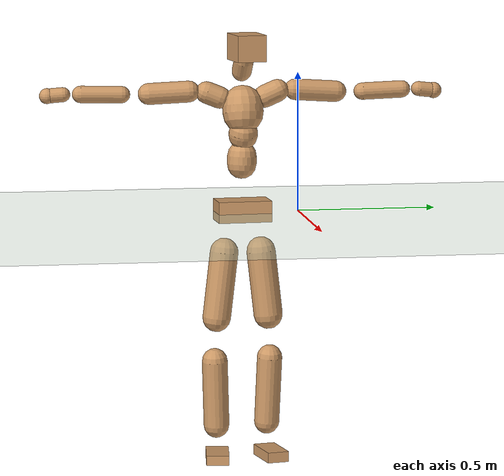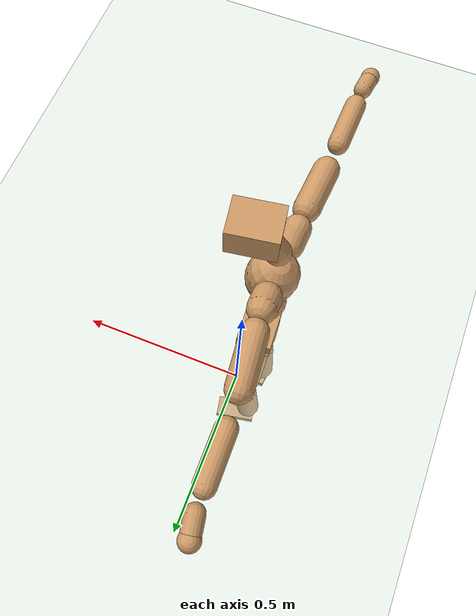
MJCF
<mujoco model="humanoid">
  <compiler coordinate="local" angle="radian"/>
  <default>
    <joint damping="0.0" armature="0.01" stiffness="0.0" limited="true"/>
    <geom conaffinity="1" condim="3" contype="7" margin="0.001" rgba="0.8 0.6 .4 1"/>
  </default>
  <asset>
    <texture type="skybox" builtin="gradient" rgb1=".4 .5 .6" rgb2="0 0 0" width="100" height="100"/>
    <texture builtin="flat" height="1278" mark="cross" markrgb="1 1 1" name="texgeom" random="0.01" rgb1="0.8 0.6 0.4" rgb2="0.8 0.6 0.4" type="cube" width="127"/>
    <texture builtin="checker" height="100" name="texplane" rgb1="0 0 0" rgb2="0.8 0.8 0.8" type="2d" width="100"/>
    <material name="MatPlane" reflectance="0.5" shininess="1" specular="1" texrepeat="60 60" texture="texplane"/>
    <material name="geom" texture="texgeom" texuniform="true"/>
  </asset>
  <worldbody>
    <light cutoff="100" diffuse="1 1 1" dir="-0 0 -1.3" directional="true" exponent="1" pos="0 0 1.3" specular=".1 .1 .1"/>
    <geom conaffinity="1" condim="3" name="floor" pos="0 0 0" rgba="0.8 0.9 0.8 1" size="100 100 .2" type="plane" material="MatPlane"/>
    <body name="Pelvis" pos="-0.0035 -0.1997 0.0163">
      <freejoint name="Pelvis"/>
      <geom type="box" contype="1" conaffinity="1" density="500" pos="-0.0058 -0.0003 -0.0116" size="0.0557 0.0963 0.0381" quat="0.9996 0.0000 0.0000 0.0287" name="Pelvis"/>
      <body name="L_Hip" pos="-0.0116 0.0591 -0.0846">
        <joint name="L_Hip_x" type="hinge" pos="0 0 0" axis="1 0 0" stiffness="800" damping="80" armature="0.02" range="-180.0000 180.0000"/>
        <joint name="L_Hip_y" type="hinge" pos="0 0 0" axis="0 1 0" stiffness="800" damping="80" armature="0.02" range="-180.0000 180.0000"/>
        <joint name="L_Hip_z" type="hinge" pos="0 0 0" axis="0 0 1" stiffness="800" damping="80" armature="0.02" range="-180.0000 180.0000"/>
        <geom type="capsule" contype="1" conaffinity="1" density="500" fromto="0.0019 0.0086 -0.0776 0.0074 0.0343 -0.3103" size="0.052" name="L_Hip"/>
        <body name="L_Knee" pos="0.0093 0.0428 -0.3879">
          <joint name="L_Knee_x" type="hinge" pos="0 0 0" axis="1 0 0" stiffness="800" damping="80" armature="0.02" range="-180.0000 180.0000"/>
          <joint name="L_Knee_y" type="hinge" pos="0 0 0" axis="0 1 0" stiffness="800" damping="80" armature="0.02" range="-180.0000 180.0000"/>
          <joint name="L_Knee_z" type="hinge" pos="0 0 0" axis="0 0 1" stiffness="800" damping="80" armature="0.02" range="-180.0000 180.0000"/>
          <geom type="capsule" contype="1" conaffinity="1" density="500" fromto="-0.0073 -0.0023 -0.0807 -0.0294 -0.0092 -0.3226" size="0.0456" name="L_Knee"/>
          <body name="L_Ankle" pos="-0.0367 -0.0115 -0.4033">
            <joint name="L_Ankle_x" type="hinge" pos="0 0 0" axis="1 0 0" stiffness="800" damping="80" armature="0.02" range="-180.0000 180.0000"/>
            <joint name="L_Ankle_y" type="hinge" pos="0 0 0" axis="0 1 0" stiffness="800" damping="80" armature="0.02" range="-180.0000 180.0000"/>
            <joint name="L_Ankle_z" type="hinge" pos="0 0 0" axis="0 0 1" stiffness="800" damping="80" armature="0.02" range="-180.0000 180.0000"/>
            <geom type="box" contype="1" conaffinity="1" density="500" pos="0.0566 0.0108 -0.0278" size="0.0787 0.0394 0.0189" quat="0.9956 0.0000 0.0000 0.0941" name="L_Ankle"/>
            <body name="L_Toe" pos="0.1132 0.0216 -0.0556">
              <joint name="L_Toe_x" type="hinge" pos="0 0 0" axis="1 0 0" stiffness="500" damping="50" armature="0.02" range="-180.0000 180.0000"/>
              <joint name="L_Toe_y" type="hinge" pos="0 0 0" axis="0 1 0" stiffness="500" damping="50" armature="0.02" range="-180.0000 180.0000"/>
              <joint name="L_Toe_z" type="hinge" pos="0 0 0" axis="0 0 1" stiffness="500" damping="50" armature="0.02" range="-180.0000 180.0000"/>
              <geom type="box" contype="1" conaffinity="1" density="500" pos="0.0000 0.0000 0.0287" size="0.0008 0.002 0.001" quat="0.9949 0.0000 0.0000 0.1009" name="L_Toe"/>
            </body>
          </body>
        </body>
      </body>
      <body name="R_Hip" pos="-0.0083 -0.0574 -0.0829">
        <joint name="R_Hip_x" type="hinge" pos="0 0 0" axis="1 0 0" stiffness="800" damping="80" armature="0.02" range="-180.0000 180.0000"/>
        <joint name="R_Hip_y" type="hinge" pos="0 0 0" axis="0 1 0" stiffness="800" damping="80" armature="0.02" range="-180.0000 180.0000"/>
        <joint name="R_Hip_z" type="hinge" pos="0 0 0" axis="0 0 1" stiffness="800" damping="80" armature="0.02" range="-180.0000 180.0000"/>
        <geom type="capsule" contype="1" conaffinity="1" density="500" fromto="0.0012 -0.0094 -0.0798 0.0048 -0.0376 -0.3191" size="0.051" name="R_Hip"/>
        <body name="R_Knee" pos="0.006 -0.047 -0.3989">
          <joint name="R_Knee_x" type="hinge" pos="0 0 0" axis="1 0 0" stiffness="800" damping="80" armature="0.02" range="-180.0000 180.0000"/>
          <joint name="R_Knee_y" type="hinge" pos="0 0 0" axis="0 1 0" stiffness="800" damping="80" armature="0.02" range="-180.0000 180.0000"/>
          <joint name="R_Knee_z" type="hinge" pos="0 0 0" axis="0 0 1" stiffness="800" damping="80" armature="0.02" range="-180.0000 180.0000"/>
          <geom type="capsule" contype="1" conaffinity="1" density="500" fromto="-0.0067 0.0029 -0.0804 -0.0268 0.0118 -0.3215" size="0.0462" name="R_Knee"/>
          <body name="R_Ankle" pos="-0.0335 0.0147 -0.4019">
            <joint name="R_Ankle_x" type="hinge" pos="0 0 0" axis="1 0 0" stiffness="800" damping="80" armature="0.02" range="-180.0000 180.0000"/>
            <joint name="R_Ankle_y" type="hinge" pos="0 0 0" axis="0 1 0" stiffness="800" damping="80" armature="0.02" range="-180.0000 180.0000"/>
            <joint name="R_Ankle_z" type="hinge" pos="0 0 0" axis="0 0 1" stiffness="800" damping="80" armature="0.02" range="-180.0000 180.0000"/>
            <geom type="box" contype="1" conaffinity="1" density="500" pos="0.0574 -0.0069 -0.0234" size="0.0802 0.0413 0.0178" quat="0.9982 0.0000 0.0000 -0.0600" name="R_Ankle"/>
            <body name="R_Toe" pos="0.1148 -0.0138 -0.0468">
              <joint name="R_Toe_x" type="hinge" pos="0 0 0" axis="1 0 0" stiffness="500" damping="50" armature="0.02" range="-180.0000 180.0000"/>
              <joint name="R_Toe_y" type="hinge" pos="0 0 0" axis="0 1 0" stiffness="500" damping="50" armature="0.02" range="-180.0000 180.0000"/>
              <joint name="R_Toe_z" type="hinge" pos="0 0 0" axis="0 0 1" stiffness="500" damping="50" armature="0.02" range="-180.0000 180.0000"/>
              <geom type="box" contype="1" conaffinity="1" density="500" pos="0.0000 0.0000 0.0262" size="0.0007 0.002 0.001" quat="0.9987 0.0000 0.0000 -0.0505" name="R_Toe"/>
            </body>
          </body>
        </body>
      </body>
      <body name="Torso" pos="-0.0151 -0.0037 0.098">
        <joint name="Torso_x" type="hinge" pos="0 0 0" axis="1 0 0" stiffness="1000" damping="100" armature="0.02" range="-180.0000 180.0000"/>
        <joint name="Torso_y" type="hinge" pos="0 0 0" axis="0 1 0" stiffness="1000" damping="100" armature="0.02" range="-180.0000 180.0000"/>
        <joint name="Torso_z" type="hinge" pos="0 0 0" axis="0 0 1" stiffness="1000" damping="100" armature="0.02" range="-180.0000 180.0000"/>
        <geom type="capsule" contype="1" conaffinity="1" density="500" fromto="-0.0014 0.0034 0.0855 -0.0009 0.0023 0.0570" size="0.0531" name="Torso"/>
        <body name="Spine" pos="-0.0023 0.0057 0.1425">
          <joint name="Spine_x" type="hinge" pos="0 0 0" axis="1 0 0" stiffness="1000" damping="100" armature="0.02" range="-180.0000 180.0000"/>
          <joint name="Spine_y" type="hinge" pos="0 0 0" axis="0 1 0" stiffness="1000" damping="100" armature="0.02" range="-180.0000 180.0000"/>
          <joint name="Spine_z" type="hinge" pos="0 0 0" axis="0 0 1" stiffness="1000" damping="100" armature="0.02" range="-180.0000 180.0000"/>
          <geom type="capsule" contype="1" conaffinity="1" density="500" fromto="0.0101 0.0013 0.0284 0.0067 0.0009 0.0189" size="0.0522" name="Spine"/>
          <body name="Chest" pos="0.0168 0.0021 0.0473">
            <joint name="Chest_x" type="hinge" pos="0 0 0" axis="1 0 0" stiffness="1000" damping="100" armature="0.02" range="-180.0000 180.0000"/>
            <joint name="Chest_y" type="hinge" pos="0 0 0" axis="0 1 0" stiffness="1000" damping="100" armature="0.02" range="-180.0000 180.0000"/>
            <joint name="Chest_z" type="hinge" pos="0 0 0" axis="0 0 1" stiffness="1000" damping="100" armature="0.02" range="-180.0000 180.0000"/>
            <geom type="capsule" contype="1" conaffinity="1" density="500" fromto="-0.0156 -0.0017 0.0779 -0.0104 -0.0012 0.0519" size="0.0732" name="Chest"/>
            <body name="Neck" pos="-0.0262 -0.0065 0.187">
              <joint name="Neck_x" type="hinge" pos="0 0 0" axis="1 0 0" stiffness="500" damping="50" armature="0.02" range="-180.0000 180.0000"/>
              <joint name="Neck_y" type="hinge" pos="0 0 0" axis="0 1 0" stiffness="500" damping="50" armature="0.02" range="-180.0000 180.0000"/>
              <joint name="Neck_z" type="hinge" pos="0 0 0" axis="0 0 1" stiffness="500" damping="50" armature="0.02" range="-180.0000 180.0000"/>
              <geom type="capsule" contype="1" conaffinity="1" density="500" fromto="0.0098 0.0012 0.0140 0.0391 0.0046 0.0560" size="0.0354" name="Neck"/>
              <body name="Head" pos="0.0489 0.0058 0.0699">
                <joint name="Head_x" type="hinge" pos="0 0 0" axis="1 0 0" stiffness="500" damping="50" armature="0.02" range="-180.0000 180.0000"/>
                <joint name="Head_y" type="hinge" pos="0 0 0" axis="0 1 0" stiffness="500" damping="50" armature="0.02" range="-180.0000 180.0000"/>
                <joint name="Head_z" type="hinge" pos="0 0 0" axis="0 0 1" stiffness="500" damping="50" armature="0.02" range="-180.0000 180.0000"/>
                <geom type="box" contype="1" conaffinity="1" density="500" pos="0.0254 0.0039 0.0360" size="0.0676 0.0526 0.0472" quat="0.9971 0.0000 0.0000 0.0761" name="Head"/>
              </body>
            </body>
            <body name="L_Thorax" pos="-0.0238 0.0647 0.1023">
              <joint name="L_Thorax_x" type="hinge" pos="0 0 0" axis="1 0 0" stiffness="500" damping="50" armature="0.02" range="-180.0000 180.0000"/>
              <joint name="L_Thorax_y" type="hinge" pos="0 0 0" axis="0 1 0" stiffness="500" damping="50" armature="0.02" range="-180.0000 180.0000"/>
              <joint name="L_Thorax_z" type="hinge" pos="0 0 0" axis="0 0 1" stiffness="500" damping="50" armature="0.02" range="-180.0000 180.0000"/>
              <geom type="capsule" contype="1" conaffinity="1" density="500" fromto="-0.0004 0.0151 0.0065 -0.0017 0.0604 0.0262" size="0.041" name="L_Thorax"/>
              <body name="L_Shoulder" pos="-0.0021 0.0756 0.0327">
                <joint name="L_Shoulder_x" type="hinge" pos="0 0 0" axis="1 0 0" stiffness="500" damping="50" armature="0.02" range="-720.0000 720.0000"/>
                <joint name="L_Shoulder_y" type="hinge" pos="0 0 0" axis="0 1 0" stiffness="500" damping="50" armature="0.02" range="-720.0000 720.0000"/>
                <joint name="L_Shoulder_z" type="hinge" pos="0 0 0" axis="0 0 1" stiffness="500" damping="50" armature="0.02" range="-720.0000 720.0000"/>
                <geom type="capsule" contype="1" conaffinity="1" density="500" fromto="-0.0050 0.0503 -0.0037 -0.0202 0.2010 -0.0148" size="0.0381" name="L_Shoulder"/>
                <body name="L_Elbow" pos="-0.0252 0.2513 -0.0185">
                  <joint name="L_Elbow_x" type="hinge" pos="0 0 0" axis="1 0 0" stiffness="500" damping="50" armature="0.02" range="-720.0000 720.0000"/>
                  <joint name="L_Elbow_y" type="hinge" pos="0 0 0" axis="0 1 0" stiffness="500" damping="50" armature="0.02" range="-720.0000 720.0000"/>
                  <joint name="L_Elbow_z" type="hinge" pos="0 0 0" axis="0 0 1" stiffness="500" damping="50" armature="0.02" range="-720.0000 720.0000"/>
                  <geom type="capsule" contype="1" conaffinity="1" density="500" fromto="-0.0006 0.0483 0.0018 -0.0023 0.1933 0.0070" size="0.0309" name="L_Elbow"/>
                  <body name="L_Wrist" pos="-0.0029 0.2416 0.0088">
                    <joint name="L_Wrist_x" type="hinge" pos="0 0 0" axis="1 0 0" stiffness="300" damping="30" armature="0.02" range="-180.0000 180.0000"/>
                    <joint name="L_Wrist_y" type="hinge" pos="0 0 0" axis="0 1 0" stiffness="300" damping="30" armature="0.02" range="-180.0000 180.0000"/>
                    <joint name="L_Wrist_z" type="hinge" pos="0 0 0" axis="0 0 1" stiffness="300" damping="30" armature="0.02" range="-180.0000 180.0000"/>
                    <geom type="capsule" contype="1" conaffinity="1" density="500" fromto="-0.0025 0.0144 -0.0019 -0.0100 0.0577 -0.0075" size="0.0264" name="L_Wrist"/>
                    <body name="L_Hand" pos="-0.0125 0.0721 -0.0094">
                      <joint name="L_Hand_x" type="hinge" pos="0 0 0" axis="1 0 0" stiffness="300" damping="30" armature="0.02" range="-180.0000 180.0000"/>
                      <joint name="L_Hand_y" type="hinge" pos="0 0 0" axis="0 1 0" stiffness="300" damping="30" armature="0.02" range="-180.0000 180.0000"/>
                      <joint name="L_Hand_z" type="hinge" pos="0 0 0" axis="0 0 1" stiffness="300" damping="30" armature="0.02" range="-180.0000 180.0000"/>
                      <geom type="sphere" contype="1" conaffinity="1" density="500" size="0.0290" pos="0.0000 0.0000 0.0000" name="L_Hand"/>
                    </body>
                  </body>
                </body>
              </body>
            </body>
            <body name="R_Thorax" pos="-0.028 -0.067 0.1001">
              <joint name="R_Thorax_x" type="hinge" pos="0 0 0" axis="1 0 0" stiffness="500" damping="50" armature="0.02" range="-180.0000 180.0000"/>
              <joint name="R_Thorax_y" type="hinge" pos="0 0 0" axis="0 1 0" stiffness="500" damping="50" armature="0.02" range="-180.0000 180.0000"/>
              <joint name="R_Thorax_z" type="hinge" pos="0 0 0" axis="0 0 1" stiffness="500" damping="50" armature="0.02" range="-180.0000 180.0000"/>
              <geom type="capsule" contype="1" conaffinity="1" density="500" fromto="-0.0013 -0.0157 0.0063 -0.0051 -0.0627 0.0251" size="0.0394" name="R_Thorax"/>
              <body name="R_Shoulder" pos="-0.0063 -0.0784 0.0313">
                <joint name="R_Shoulder_x" type="hinge" pos="0 0 0" axis="1 0 0" stiffness="500" damping="50" armature="0.02" range="-720.0000 720.0000"/>
                <joint name="R_Shoulder_y" type="hinge" pos="0 0 0" axis="0 1 0" stiffness="500" damping="50" armature="0.02" range="-720.0000 720.0000"/>
                <joint name="R_Shoulder_z" type="hinge" pos="0 0 0" axis="0 0 1" stiffness="500" damping="50" armature="0.02" range="-720.0000 720.0000"/>
                <geom type="capsule" contype="1" conaffinity="1" density="500" fromto="-0.0033 -0.0478 -0.0025 -0.0132 -0.1914 -0.0099" size="0.0385" name="R_Shoulder"/>
                <body name="R_Elbow" pos="-0.0166 -0.2392 -0.0124">
                  <joint name="R_Elbow_x" type="hinge" pos="0 0 0" axis="1 0 0" stiffness="500" damping="50" armature="0.02" range="-720.0000 720.0000"/>
                  <joint name="R_Elbow_y" type="hinge" pos="0 0 0" axis="0 1 0" stiffness="500" damping="50" armature="0.02" range="-720.0000 720.0000"/>
                  <joint name="R_Elbow_z" type="hinge" pos="0 0 0" axis="0 0 1" stiffness="500" damping="50" armature="0.02" range="-720.0000 720.0000"/>
                  <geom type="capsule" contype="1" conaffinity="1" density="500" fromto="-0.0017 -0.0488 0.0010 -0.0069 -0.1953 0.0039" size="0.0305" name="R_Elbow"/>
                  <body name="R_Wrist" pos="-0.0086 -0.2442 0.0049">
                    <joint name="R_Wrist_x" type="hinge" pos="0 0 0" axis="1 0 0" stiffness="300" damping="30" armature="0.02" range="-180.0000 180.0000"/>
                    <joint name="R_Wrist_y" type="hinge" pos="0 0 0" axis="0 1 0" stiffness="300" damping="30" armature="0.02" range="-180.0000 180.0000"/>
                    <joint name="R_Wrist_z" type="hinge" pos="0 0 0" axis="0 0 1" stiffness="300" damping="30" armature="0.02" range="-180.0000 180.0000"/>
                    <geom type="capsule" contype="1" conaffinity="1" density="500" fromto="-0.0017 -0.0140 -0.0013 -0.0070 -0.0561 -0.0050" size="0.0262" name="R_Wrist"/>
                    <body name="R_Hand" pos="-0.0087 -0.0701 -0.0063">
                      <joint name="R_Hand_x" type="hinge" pos="0 0 0" axis="1 0 0" stiffness="300" damping="30" armature="0.02" range="-180.0000 180.0000"/>
                      <joint name="R_Hand_y" type="hinge" pos="0 0 0" axis="0 1 0" stiffness="300" damping="30" armature="0.02" range="-180.0000 180.0000"/>
                      <joint name="R_Hand_z" type="hinge" pos="0 0 0" axis="0 0 1" stiffness="300" damping="30" armature="0.02" range="-180.0000 180.0000"/>
                      <geom type="sphere" contype="1" conaffinity="1" density="500" size="0.0280" pos="0.0000 0.0000 0.0000" name="R_Hand"/>
                    </body>
                  </body>
                </body>
              </body>
            </body>
          </body>
        </body>
      </body>
    </body>
  </worldbody>
  <actuator>
    <motor name="L_Hip_x" joint="L_Hip_x" gear="500"/>
    <motor name="L_Hip_y" joint="L_Hip_y" gear="500"/>
    <motor name="L_Hip_z" joint="L_Hip_z" gear="500"/>
    <motor name="L_Knee_x" joint="L_Knee_x" gear="500"/>
    <motor name="L_Knee_y" joint="L_Knee_y" gear="500"/>
    <motor name="L_Knee_z" joint="L_Knee_z" gear="500"/>
    <motor name="L_Ankle_x" joint="L_Ankle_x" gear="500"/>
    <motor name="L_Ankle_y" joint="L_Ankle_y" gear="500"/>
    <motor name="L_Ankle_z" joint="L_Ankle_z" gear="500"/>
    <motor name="L_Toe_x" joint="L_Toe_x" gear="500"/>
    <motor name="L_Toe_y" joint="L_Toe_y" gear="500"/>
    <motor name="L_Toe_z" joint="L_Toe_z" gear="500"/>
    <motor name="R_Hip_x" joint="R_Hip_x" gear="500"/>
    <motor name="R_Hip_y" joint="R_Hip_y" gear="500"/>
    <motor name="R_Hip_z" joint="R_Hip_z" gear="500"/>
    <motor name="R_Knee_x" joint="R_Knee_x" gear="500"/>
    <motor name="R_Knee_y" joint="R_Knee_y" gear="500"/>
    <motor name="R_Knee_z" joint="R_Knee_z" gear="500"/>
    <motor name="R_Ankle_x" joint="R_Ankle_x" gear="500"/>
    <motor name="R_Ankle_y" joint="R_Ankle_y" gear="500"/>
    <motor name="R_Ankle_z" joint="R_Ankle_z" gear="500"/>
    <motor name="R_Toe_x" joint="R_Toe_x" gear="500"/>
    <motor name="R_Toe_y" joint="R_Toe_y" gear="500"/>
    <motor name="R_Toe_z" joint="R_Toe_z" gear="500"/>
    <motor name="Torso_x" joint="Torso_x" gear="500"/>
    <motor name="Torso_y" joint="Torso_y" gear="500"/>
    <motor name="Torso_z" joint="Torso_z" gear="500"/>
    <motor name="Spine_x" joint="Spine_x" gear="500"/>
    <motor name="Spine_y" joint="Spine_y" gear="500"/>
    <motor name="Spine_z" joint="Spine_z" gear="500"/>
    <motor name="Chest_x" joint="Chest_x" gear="500"/>
    <motor name="Chest_y" joint="Chest_y" gear="500"/>
    <motor name="Chest_z" joint="Chest_z" gear="500"/>
    <motor name="Neck_x" joint="Neck_x" gear="500"/>
    <motor name="Neck_y" joint="Neck_y" gear="500"/>
    <motor name="Neck_z" joint="Neck_z" gear="500"/>
    <motor name="Head_x" joint="Head_x" gear="500"/>
    <motor name="Head_y" joint="Head_y" gear="500"/>
    <motor name="Head_z" joint="Head_z" gear="500"/>
    <motor name="L_Thorax_x" joint="L_Thorax_x" gear="500"/>
    <motor name="L_Thorax_y" joint="L_Thorax_y" gear="500"/>
    <motor name="L_Thorax_z" joint="L_Thorax_z" gear="500"/>
    <motor name="L_Shoulder_x" joint="L_Shoulder_x" gear="500"/>
    <motor name="L_Shoulder_y" joint="L_Shoulder_y" gear="500"/>
    <motor name="L_Shoulder_z" joint="L_Shoulder_z" gear="500"/>
    <motor name="L_Elbow_x" joint="L_Elbow_x" gear="500"/>
    <motor name="L_Elbow_y" joint="L_Elbow_y" gear="500"/>
    <motor name="L_Elbow_z" joint="L_Elbow_z" gear="500"/>
    <motor name="L_Wrist_x" joint="L_Wrist_x" gear="500"/>
    <motor name="L_Wrist_y" joint="L_Wrist_y" gear="500"/>
    <motor name="L_Wrist_z" joint="L_Wrist_z" gear="500"/>
    <motor name="L_Hand_x" joint="L_Hand_x" gear="500"/>
    <motor name="L_Hand_y" joint="L_Hand_y" gear="500"/>
    <motor name="L_Hand_z" joint="L_Hand_z" gear="500"/>
    <motor name="R_Thorax_x" joint="R_Thorax_x" gear="500"/>
    <motor name="R_Thorax_y" joint="R_Thorax_y" gear="500"/>
    <motor name="R_Thorax_z" joint="R_Thorax_z" gear="500"/>
    <motor name="R_Shoulder_x" joint="R_Shoulder_x" gear="500"/>
    <motor name="R_Shoulder_y" joint="R_Shoulder_y" gear="500"/>
    <motor name="R_Shoulder_z" joint="R_Shoulder_z" gear="500"/>
    <motor name="R_Elbow_x" joint="R_Elbow_x" gear="500"/>
    <motor name="R_Elbow_y" joint="R_Elbow_y" gear="500"/>
    <motor name="R_Elbow_z" joint="R_Elbow_z" gear="500"/>
    <motor name="R_Wrist_x" joint="R_Wrist_x" gear="500"/>
    <motor name="R_Wrist_y" joint="R_Wrist_y" gear="500"/>
    <motor name="R_Wrist_z" joint="R_Wrist_z" gear="500"/>
    <motor name="R_Hand_x" joint="R_Hand_x" gear="500"/>
    <motor name="R_Hand_y" joint="R_Hand_y" gear="500"/>
    <motor name="R_Hand_z" joint="R_Hand_z" gear="500"/>
  </actuator>
  <contact>
    <exclude body1="Torso" body2="Chest"/>
    <exclude body1="Head" body2="Chest"/>
    <exclude body1="R_Knee" body2="R_Toe"/>
    <exclude body1="R_Knee" body2="L_Ankle"/>
    <exclude body1="R_Knee" body2="L_Toe"/>
    <exclude body1="L_Knee" body2="L_Toe"/>
    <exclude body1="L_Knee" body2="R_Ankle"/>
    <exclude body1="L_Knee" body2="R_Toe"/>
    <exclude body1="L_Shoulder" body2="Chest"/>
    <exclude body1="R_Shoulder" body2="Chest"/>
  </contact>
  <sensor/>
  <size njmax="700" nconmax="700"/>
</mujoco>
